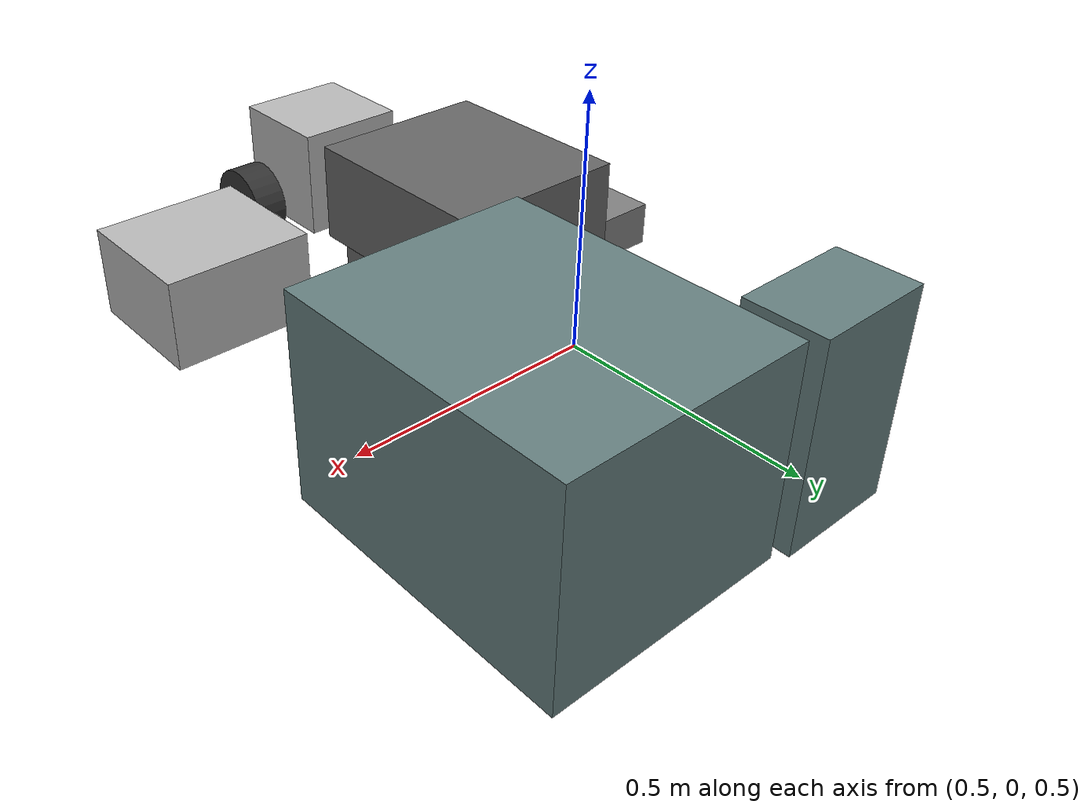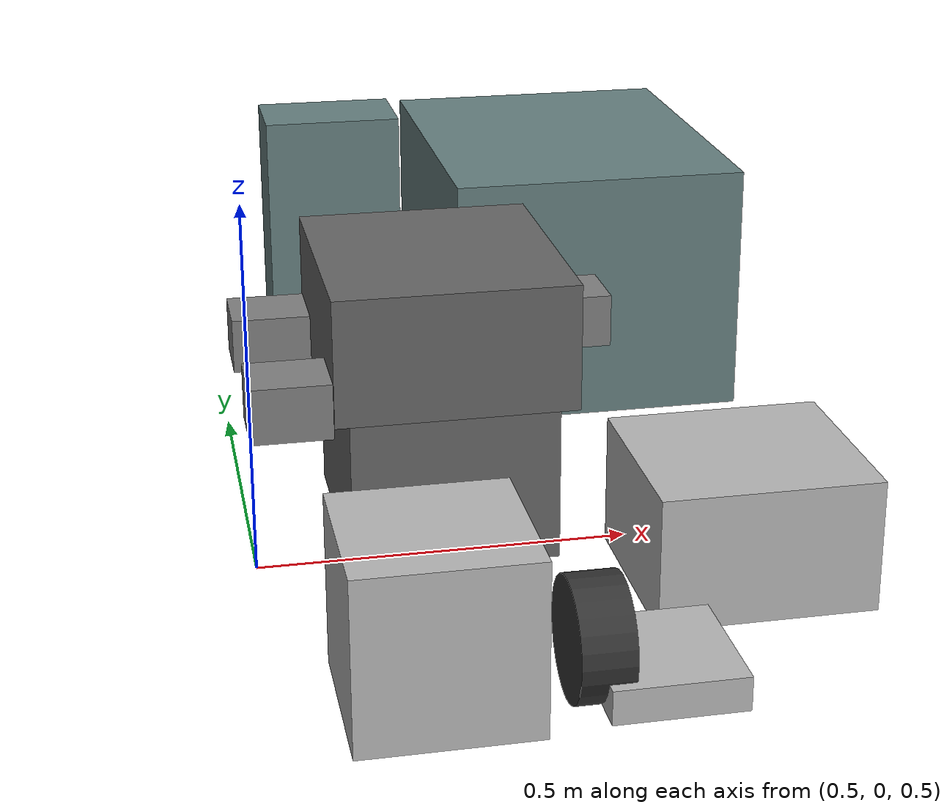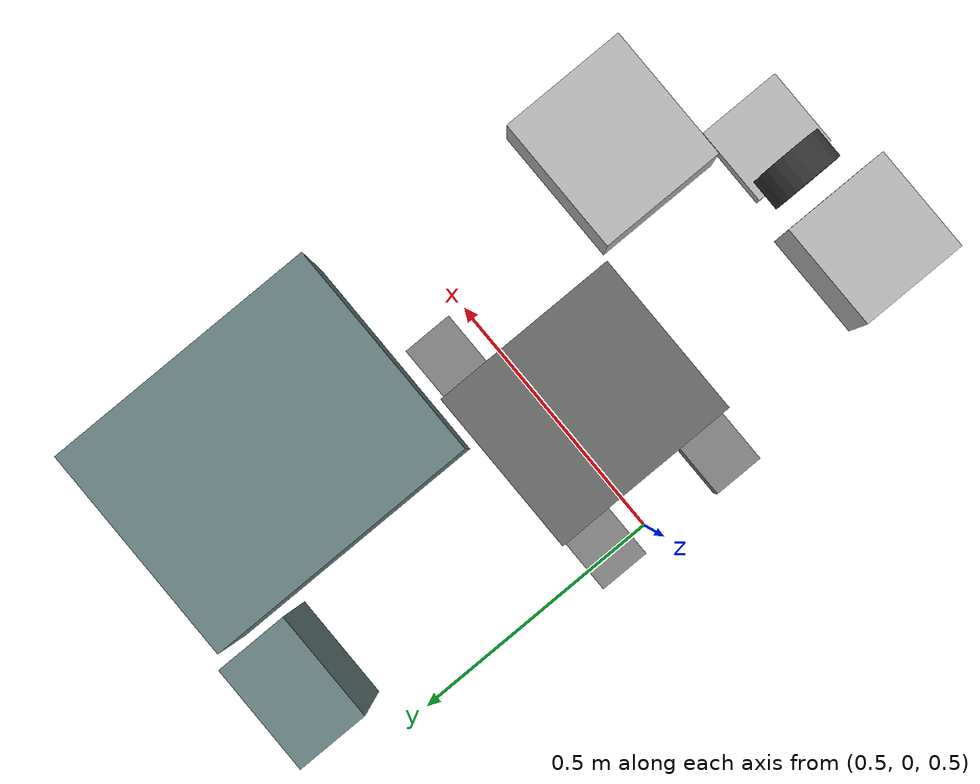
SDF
<sdf version="1.4">
 <world name="default">
  <scene>
   <grid>false</grid>
   <origin_visual>false</origin_visual>
   <sky><clouds><speed>12</speed></clouds></sky>
  </scene>
  <physics name="ode" type="ode">
   <max_step_size>0.01</max_step_size>
   <real_time_factor>1</real_time_factor>
   <real_time_update_rate>100</real_time_update_rate>
   <ode>
    <solver>
     <island_threads>2</island_threads>
     <type>quick</type>
     <iters>100</iters>
     <sor>1.0</sor>
     <use_dynamic_moi_rescaling>false</use_dynamic_moi_rescaling>
    </solver>
   </ode>
  </physics>
  <plugin name="stepping_plugin" filename="libstepping_plugin.so"/>
  <plugin name="gazebo_ros_tf_plugin" filename="libgazebo_ros_tf_plugin.so"/>
  <plugin name="ros_link_attacher_plugin" filename="libgazebo_ros_link_attacher.so"/>
  <plugin name="collision_map_plugin" filename="libcollision_map_plugin.so"/>
  <include><uri>model://sun</uri></include>
  <include><pose>0.64 -0.58 0.62 0 0 0</pose><uri>model://car_alternator</uri></include>
  <include><pose>0.735 -0.04 0.62 0 0 0</pose><uri>model://car_engine2</uri></include>
  <include><pose>0.68 0.60 0.62 0 0 0</pose><uri>model://car_tube_and_tank</uri></include>
  <include><pose>1.04 -0.36 0.62 0 0 0</pose><uri>model://car_coolant_tank</uri></include>
  <include><pose>0.81 -0.58 0.62 0 0 0</pose><uri>model://car_pulley</uri></include>
 </world>
</sdf>

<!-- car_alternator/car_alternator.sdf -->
<sdf version="1.6">
    <model name="car_alternator">
        <allow_auto_disable>true</allow_auto_disable>
        <link name="link_1">
            <kinematic>true</kinematic>
            <pose>0 0 0.105 0 0 0 0</pose>
            <visual name="visual">
                <geometry>
                    <box>
                        <size>0.20 0.20 0.20</size>
                    </box>
                </geometry>
            </visual>
            <collision name="collision">
                <geometry>
                    <box>
                        <size>0.20 0.20 0.20</size>
                    </box>
                </geometry>
            </collision>
        </link>
    </model>
</sdf>

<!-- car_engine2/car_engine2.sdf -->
<sdf version="1.6">
    <model name="car_engine2">
        <allow_auto_disable>true</allow_auto_disable>
        <link name="body2">
            <kinematic>true</kinematic>
            <pose>0 0 0.06 0 0 0 0</pose>
            <visual name="visual">
                <geometry>
                    <box>
                        <size>0.26 0.30 0.21</size>
                    </box>
                </geometry>
                <material>
                    <ambient>0.4 0.4 0.4 1.0</ambient>
                    <diffuse>0.4 0.4 0.4 1.0</diffuse>
                </material>
            </visual>
            <collision name="collision">
                <geometry>
                    <box>
                        <size>0.26 0.30 0.21</size>
                    </box>
                </geometry>
            </collision>
        </link>
        <link name="body">
            <kinematic>true</kinematic>
            <pose>0 0 0.24 0 0 0 0</pose>
            <visual name="visual">
                <geometry>
                    <box>
                        <size>0.30 0.34 0.16</size>
                    </box>
                </geometry>
                <material>
                    <ambient>0.4 0.4 0.4 1.0</ambient>
                    <diffuse>0.4 0.4 0.4 1.0</diffuse>
                </material>
            </visual>
            <collision name="collision">
                <geometry>
                    <box>
                        <size>0.30 0.34 0.16</size>
                    </box>
                </geometry>
                <surface>
                    <friction>
                        <ode>
                            <mu>10.00</mu>
                            <mu2>10.00</mu2>
                        </ode>
                    </friction>
                    <contact>
                        <ode>
                            <kp>1e15</kp>
                            <kd>1e11</kd>
                        </ode>
                    </contact>
                </surface>
            </collision>
        </link>
        <link name="lift_tab1">
            <kinematic>true</kinematic>
            <pose>0.20 0.12 0.18 0 0 0 0</pose>
            <visual name="visual">
                <geometry>
                    <box>
                        <size>0.1 0.09 0.07</size>
                    </box>
                </geometry>
                <material>
                    <ambient>0.5 0.5 0.5 1.0</ambient>
                    <diffuse>0.5 0.5 0.5 1.0</diffuse>
                </material>
            </visual>
            <collision name="collision">
                <geometry>
                    <box>
                        <size>0.1 0.09 0.07</size>
                    </box>
                </geometry>
            </collision>
        </link>
        <link name="lift_tab3">
            <kinematic>true</kinematic>
            <pose>-0.20 0.12 0.18 0 0 0 0</pose>
            <visual name="visual">
                <geometry>
                    <box>
                        <size>0.1 0.09 0.07</size>
                    </box>
                </geometry>
                <material>
                    <ambient>0.5 0.5 0.5 1.0</ambient>
                    <diffuse>0.5 0.5 0.5 1.0</diffuse>
                </material>
            </visual>
            <collision name="collision">
                <geometry>
                    <box>
                        <size>0.1 0.09 0.07</size>
                    </box>
                </geometry>
            </collision>
        </link>
        <link name="lift_tab4">
            <kinematic>true</kinematic>
            <pose>-0.20 -0.12 0.18 0 0 0 0</pose>
            <visual name="visual">
                <geometry>
                    <box>
                        <size>0.1 0.09 0.07</size>
                    </box>
                </geometry>
                <material>
                    <ambient>0.5 0.5 0.5 1.0</ambient>
                    <diffuse>0.5 0.5 0.5 1.0</diffuse>
                </material>
            </visual>
            <collision name="collision">
                <geometry>
                    <box>
                        <size>0.1 0.09 0.07</size>
                    </box>
                </geometry>
            </collision>
        </link>
    </model>
</sdf>

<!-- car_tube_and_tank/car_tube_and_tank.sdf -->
<sdf version="1.6">
    <model name="car_tube_and_tank">
        <allow_auto_disable>true</allow_auto_disable>
        <link name="box">
            <kinematic>true</kinematic>
            <pose>0.32 -0.2 0.17 0 0 0 0</pose>
            <visual name="visual">
                <geometry>
                    <box>
                        <size>0.40 0.5 0.34</size>
                    </box>
                </geometry>
                <material>
                    <ambient>0.4 0.5 0.5 1.0</ambient>
                    <diffuse>0.4 0.5 0.5 1.0</diffuse>
                </material>
            </visual>
            <collision name="collision">
                <geometry>
                    <box>
                        <size>0.40 0.5 0.34</size>
                    </box>
                </geometry>
            </collision>
        </link>
        <link name="tube">
            <kinematic>true</kinematic>
            <pose>0 0 0.17 0 0 0 0</pose>
            <visual name="visual">
                <geometry>
                    <box>
                        <size>0.2 0.13 0.34</size>
                    </box>
                </geometry>
                <material>
                    <ambient>0.4 0.5 0.5 1.0</ambient>
                    <diffuse>0.4 0.5 0.5 1.0</diffuse>
                </material>
            </visual>
            <collision name="collision">
                <geometry>
                    <box>
                        <size>0.2 0.18 0.34</size>
                    </box>
                </geometry>
            </collision>
        </link>
    </model>
</sdf>

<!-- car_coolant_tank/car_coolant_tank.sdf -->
<sdf version="1.6">
    <model name="car_coolant_tank">
        <allow_auto_disable>true</allow_auto_disable>
        <link name="link_1">
            <kinematic>true</kinematic>
            <pose>0 0 0.08 0 0 0 0</pose>
            <visual name="visual">
                <geometry>
                    <box>
                        <size>0.26 0.24 0.16</size>
                    </box>
                </geometry>
            </visual>
            <collision name="box_collision">
                <geometry>
                    <box>
                        <size>0.26 0.24 0.16</size>
                    </box>
                </geometry>
            </collision>
        </link>
    </model>
</sdf>

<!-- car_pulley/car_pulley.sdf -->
<sdf version="1.6">
    <model name="car_pulley">
        <allow_auto_disable>true</allow_auto_disable>
        <link name="plate">
            <kinematic>true</kinematic>
            <pose>0.075 0 0.02 0 0 0</pose>
            <visual name="visual">
                <geometry>
                    <box>
                        <size>0.15 0.16 0.04</size>
                    </box>
                </geometry>
            </visual>
            <collision name="collision">
                <geometry>
                    <box>
                        <size>0.15 0.16 0.04</size>
                    </box>
                </geometry>
            </collision>
        </link>
        <link name="pulley">
            <kinematic>true</kinematic>
            <pose>0 0 0.06 0 1.570796 0</pose>
            <visual name="visual">
                <geometry>
                    <cylinder>
                        <radius>0.07</radius>
                        <length>0.06</length>
                    </cylinder>
                </geometry>
                <material>
                    <ambient>0.2 0.2 0.2 1.0</ambient>
                    <diffuse>0.2 0.2 0.2 1.0</diffuse>
                </material>
            </visual>
            <collision name="collision">
                <geometry>
                    <cylinder>
                        <radius>0.07</radius>
                        <length>0.06</length>
                    </cylinder>
                </geometry>
            </collision>
        </link>
    </model>
</sdf>
